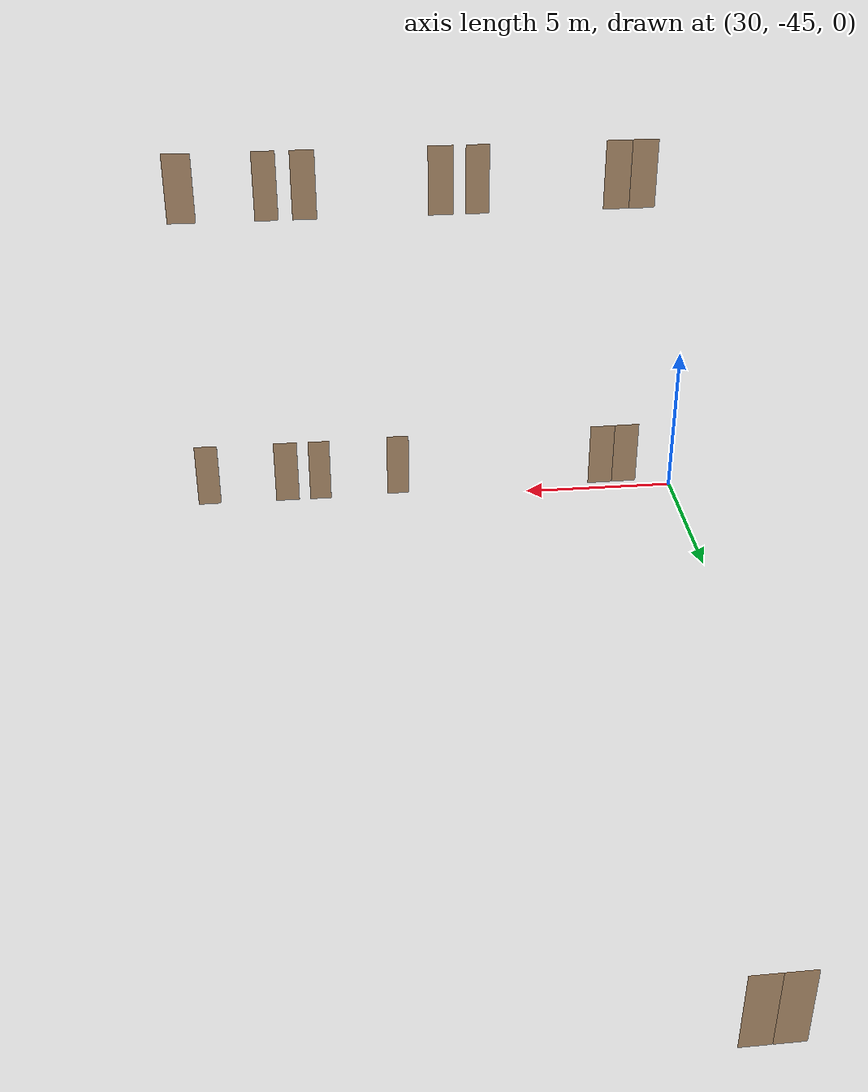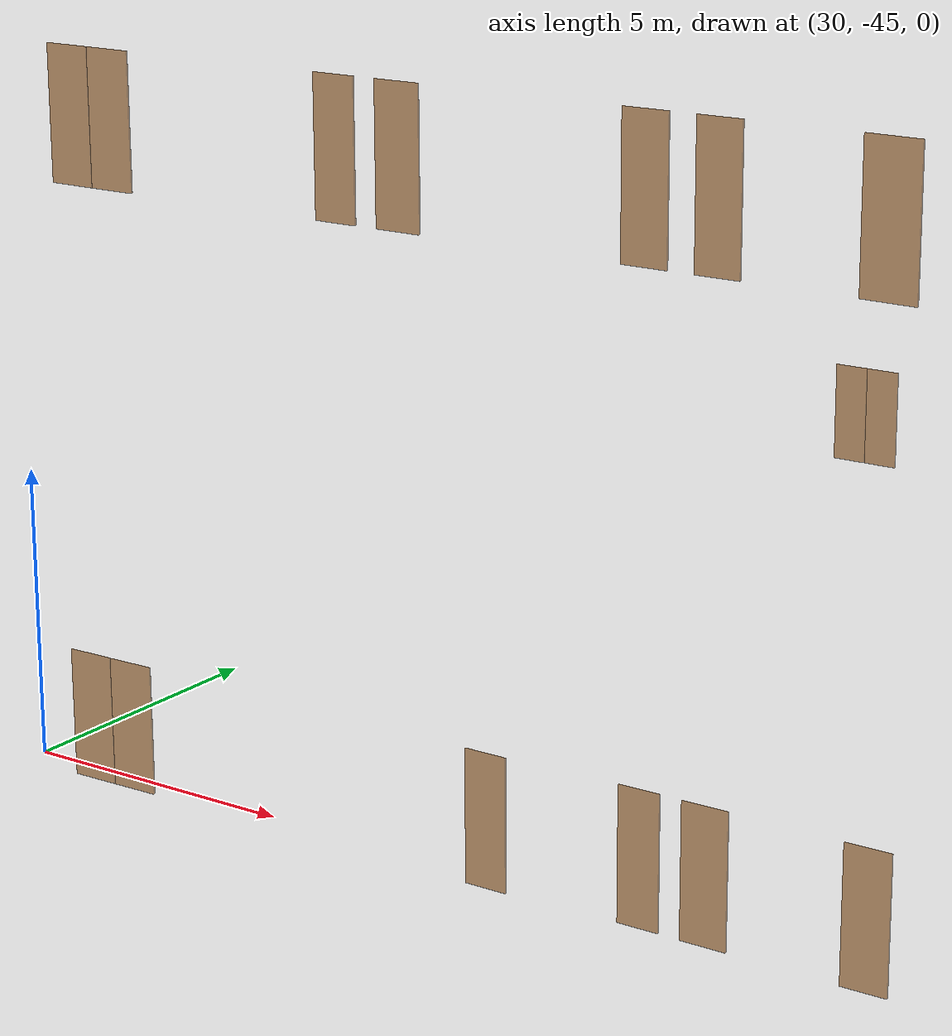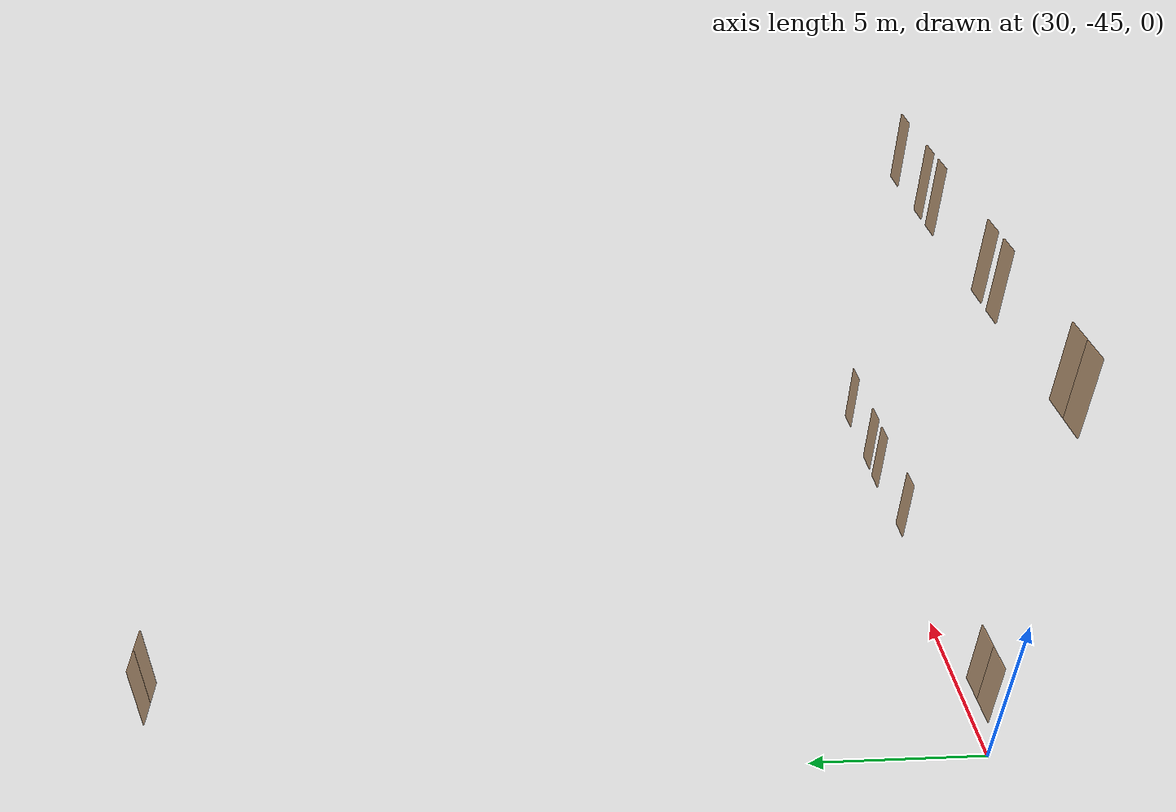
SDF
<sdf version="1.7">
 <world name="sim_world">
  <model name="part1_10_end">
   <pose>33.01170053539864 -21.444909987355643 0.0 0 0 -3.1235009749570586</pose>
   <link name="right">
    <pose>0.38805686569392206 0 1.11 0 0 0</pose>
    <visual name="right_visual">
     <geometry><box><size>0.7661137313878441 0.03 2.2</size></box></geometry>
     <material>
      <ambient>0.5 0.25 0 0.6</ambient>
      <diffuse>0.5 0.25 0 0.6</diffuse>
      <pbr><metal><metalness>0.0</metalness></metal></pbr>
     </material>
    </visual>
    <collision name="right_collision">
     <geometry><box><size>0.7661137313878441 0.03 2.2</size></box></geometry>
     <surface><contact><collide_bitmask>0x02</collide_bitmask></contact></surface>
    </collision>
    <inertial>
     <mass>50.0</mass>
     <inertia><ixx>20.17041666666667</ixx><iyy>22.612209372587532</iyy><izz>2.4492927059208576</izz></inertia>
    </inertial>
   </link>
   <joint name="right_joint" type="revolute">
    <parent>world</parent>
    <child>right</child>
    <axis><xyz>0 0 -1</xyz><limit><lower>0</lower><upper>1.57</upper></limit></axis>
    <pose>0.38805686569392206 0 0 0 0 0</pose>
   </joint>
   <link name="left">
    <pose>-0.38805686569392206 0 1.11 0 0 0</pose>
    <visual name="left_visual">
     <geometry><box><size>0.7661137313878441 0.03 2.2</size></box></geometry>
     <material>
      <ambient>0.5 0.25 0 0.6</ambient>
      <diffuse>0.5 0.25 0 0.6</diffuse>
      <pbr><metal><metalness>0.0</metalness></metal></pbr>
     </material>
    </visual>
    <collision name="left_collision">
     <geometry><box><size>0.7661137313878441 0.03 2.2</size></box></geometry>
     <surface><contact><collide_bitmask>0x02</collide_bitmask></contact></surface>
    </collision>
    <inertial>
     <mass>50.0</mass>
     <inertia><ixx>20.17041666666667</ixx><iyy>22.612209372587532</iyy><izz>2.4492927059208576</izz></inertia>
    </inertial>
   </link>
   <joint name="left_joint" type="revolute">
    <parent>world</parent>
    <child>left</child>
    <axis><xyz>0 0 -1</xyz><limit><lower>-1.57</lower><upper>0</upper></limit></axis>
    <pose>-0.38805686569392206 0 0 0 0 0</pose>
   </joint>
   <plugin name="register_component" filename="libregister_component.so">
    <component name="Door">
     <v_max_door>0.5</v_max_door>
     <a_max_door>0.3</a_max_door>
     <a_nom_door>0.15</a_nom_door>
     <dx_min_door>0.01</dx_min_door>
     <f_max_door>500.0</f_max_door>
     <ros_interface>true</ros_interface>
     <door name="part1_10_end" type="DoubleSwingDoor" left_joint_name="left_joint" right_joint_name="right_joint"/>
    </component>
   </plugin>
  </model>
  <model name="part6_9_end">
   <pose>45.87496071324243 -45.209163320865215 0.0 0 0 -3.124644767900746</pose>
   <link name="right">
    <pose>0 0 1.11 0 0 0</pose>
    <visual name="right_visual">
     <geometry><box><size>0.7541019121911322 0.03 2.2</size></box></geometry>
     <material>
      <ambient>0.5 0.25 0 0.6</ambient>
      <diffuse>0.5 0.25 0 0.6</diffuse>
      <pbr><metal><metalness>0.0</metalness></metal></pbr>
     </material>
    </visual>
    <collision name="right_collision">
     <geometry><box><size>0.7541019121911322 0.03 2.2</size></box></geometry>
     <surface><contact><collide_bitmask>0x02</collide_bitmask></contact></surface>
    </collision>
    <inertial>
     <mass>50.0</mass>
     <inertia><ixx>20.17041666666667</ixx><iyy>22.536123724876347</iyy><izz>2.3732070582096756</izz></inertia>
    </inertial>
   </link>
   <joint name="right_joint" type="revolute">
    <parent>world</parent>
    <child>right</child>
    <axis><xyz>0 0 -1</xyz><limit><lower>0</lower><upper>1.57</upper></limit></axis>
    <pose>0.3820509560955661 0 0 0 0 0</pose>
   </joint>
   <plugin name="register_component" filename="libregister_component.so">
    <component name="Door">
     <v_max_door>0.5</v_max_door>
     <a_max_door>0.3</a_max_door>
     <a_nom_door>0.15</a_nom_door>
     <dx_min_door>0.01</dx_min_door>
     <f_max_door>500.0</f_max_door>
     <ros_interface>true</ros_interface>
     <door name="part6_9_end" type="SwingDoor" left_joint_name="empty_joint" right_joint_name="right_joint"/>
    </component>
   </plugin>
  </model>
  <model name="part6_8">
   <pose>43.22708725172956 -45.21547750472737 0.0 0 0 -3.1343271389946814</pose>
   <link name="right">
    <pose>0 0 1.11 0 0 0</pose>
    <visual name="right_visual">
     <geometry><box><size>0.7806658023973515 0.03 2.2</size></box></geometry>
     <material>
      <ambient>0.5 0.25 0 0.6</ambient>
      <diffuse>0.5 0.25 0 0.6</diffuse>
      <pbr><metal><metalness>0.0</metalness></metal></pbr>
     </material>
    </visual>
    <collision name="right_collision">
     <geometry><box><size>0.7806658023973515 0.03 2.2</size></box></geometry>
     <surface><contact><collide_bitmask>0x02</collide_bitmask></contact></surface>
    </collision>
    <inertial>
     <mass>50.0</mass>
     <inertia><ixx>20.17041666666667</ixx><iyy>22.705996229302926</iyy><izz>2.543079562636253</izz></inertia>
    </inertial>
   </link>
   <joint name="right_joint" type="revolute">
    <parent>world</parent>
    <child>right</child>
    <axis><xyz>0 0 -1</xyz><limit><lower>0</lower><upper>1.57</upper></limit></axis>
    <pose>0.39533290119867576 0 0 0 0 0</pose>
   </joint>
   <plugin name="register_component" filename="libregister_component.so">
    <component name="Door">
     <v_max_door>0.5</v_max_door>
     <a_max_door>0.3</a_max_door>
     <a_nom_door>0.15</a_nom_door>
     <dx_min_door>0.01</dx_min_door>
     <f_max_door>500.0</f_max_door>
     <ros_interface>true</ros_interface>
     <door name="part6_8" type="SwingDoor" left_joint_name="empty_joint" right_joint_name="right_joint"/>
    </component>
   </plugin>
  </model>
  <model name="part6_6">
   <pose>39.43227077368016 -45.329638269879325 0.0 0 0 -3.139936634285074</pose>
   <link name="right">
    <pose>0 0 1.11 0 0 0</pose>
    <visual name="right_visual">
     <geometry><box><size>0.7361016762655125 0.03 2.2</size></box></geometry>
     <material>
      <ambient>0.5 0.25 0 0.6</ambient>
      <diffuse>0.5 0.25 0 0.6</diffuse>
      <pbr><metal><metalness>0.0</metalness></metal></pbr>
     </material>
    </visual>
    <collision name="right_collision">
     <geometry><box><size>0.7361016762655125 0.03 2.2</size></box></geometry>
     <surface><contact><collide_bitmask>0x02</collide_bitmask></contact></surface>
    </collision>
    <inertial>
     <mass>50.0</mass>
     <inertia><ixx>20.17041666666667</ixx><iyy>22.42435699083708</iyy><izz>2.2614403241704055</izz></inertia>
    </inertial>
   </link>
   <joint name="right_joint" type="revolute">
    <parent>world</parent>
    <child>right</child>
    <axis><xyz>0 0 1</xyz><limit><lower>0</lower><upper>1.57</upper></limit></axis>
    <pose>0.37305083813275625 0 0 0 0 0</pose>
   </joint>
   <plugin name="register_component" filename="libregister_component.so">
    <component name="Door">
     <v_max_door>0.5</v_max_door>
     <a_max_door>0.3</a_max_door>
     <a_nom_door>0.15</a_nom_door>
     <dx_min_door>0.01</dx_min_door>
     <f_max_door>500.0</f_max_door>
     <ros_interface>true</ros_interface>
     <door name="part6_6" type="SwingDoor" left_joint_name="empty_joint" right_joint_name="right_joint"/>
    </component>
   </plugin>
  </model>
  <model name="part6_7">
   <pose>42.101445579734346 -45.2161594686769 0.0 0 0 -3.1335356914522765</pose>
   <link name="right">
    <pose>0 0 1.11 0 0 0</pose>
    <visual name="right_visual">
     <geometry><box><size>0.708973800750492 0.03 2.2</size></box></geometry>
     <material>
      <ambient>0.5 0.25 0 0.6</ambient>
      <diffuse>0.5 0.25 0 0.6</diffuse>
      <pbr><metal><metalness>0.0</metalness></metal></pbr>
     </material>
    </visual>
    <collision name="right_collision">
     <geometry><box><size>0.708973800750492 0.03 2.2</size></box></geometry>
     <surface><contact><collide_bitmask>0x02</collide_bitmask></contact></surface>
    </collision>
    <inertial>
     <mass>50.0</mass>
     <inertia><ixx>20.17041666666667</ixx><iyy>22.261016042294166</iyy><izz>2.098099375627493</izz></inertia>
    </inertial>
   </link>
   <joint name="right_joint" type="revolute">
    <parent>world</parent>
    <child>right</child>
    <axis><xyz>0 0 1</xyz><limit><lower>0</lower><upper>1.57</upper></limit></axis>
    <pose>0.359486900375246 0 0 0 0 0</pose>
   </joint>
   <plugin name="register_component" filename="libregister_component.so">
    <component name="Door">
     <v_max_door>0.5</v_max_door>
     <a_max_door>0.3</a_max_door>
     <a_nom_door>0.15</a_nom_door>
     <dx_min_door>0.01</dx_min_door>
     <f_max_door>500.0</f_max_door>
     <ros_interface>true</ros_interface>
     <door name="part6_7" type="SwingDoor" left_joint_name="empty_joint" right_joint_name="right_joint"/>
    </component>
   </plugin>
  </model>
  <model name="part6_5">
   <pose>31.96186918527571 -45.401950517845776 0.0 0 0 -3.119890546180535</pose>
   <link name="right">
    <pose>0.4203733144691241 0 1.11 0 0 0</pose>
    <visual name="right_visual">
     <geometry><box><size>0.8307466289382482 0.03 2.2</size></box></geometry>
     <material>
      <ambient>0.5 0.25 0 0.6</ambient>
      <diffuse>0.5 0.25 0 0.6</diffuse>
      <pbr><metal><metalness>0.0</metalness></metal></pbr>
     </material>
    </visual>
    <collision name="right_collision">
     <geometry><box><size>0.8307466289382482 0.03 2.2</size></box></geometry>
     <surface><contact><collide_bitmask>0x02</collide_bitmask></contact></surface>
    </collision>
    <inertial>
     <mass>50.0</mass>
     <inertia><ixx>20.17041666666667</ixx><iyy>23.042249839551104</iyy><izz>2.8793331728844316</izz></inertia>
    </inertial>
   </link>
   <joint name="right_joint" type="revolute">
    <parent>world</parent>
    <child>right</child>
    <axis><xyz>0 0 -1</xyz><limit><lower>0</lower><upper>1.57</upper></limit></axis>
    <pose>0.4203733144691241 0 0 0 0 0</pose>
   </joint>
   <link name="left">
    <pose>-0.4203733144691241 0 1.11 0 0 0</pose>
    <visual name="left_visual">
     <geometry><box><size>0.8307466289382482 0.03 2.2</size></box></geometry>
     <material>
      <ambient>0.5 0.25 0 0.6</ambient>
      <diffuse>0.5 0.25 0 0.6</diffuse>
      <pbr><metal><metalness>0.0</metalness></metal></pbr>
     </material>
    </visual>
    <collision name="left_collision">
     <geometry><box><size>0.8307466289382482 0.03 2.2</size></box></geometry>
     <surface><contact><collide_bitmask>0x02</collide_bitmask></contact></surface>
    </collision>
    <inertial>
     <mass>50.0</mass>
     <inertia><ixx>20.17041666666667</ixx><iyy>23.042249839551104</iyy><izz>2.8793331728844316</izz></inertia>
    </inertial>
   </link>
   <joint name="left_joint" type="revolute">
    <parent>world</parent>
    <child>left</child>
    <axis><xyz>0 0 -1</xyz><limit><lower>-1.57</lower><upper>0</upper></limit></axis>
    <pose>-0.4203733144691241 0 0 0 0 0</pose>
   </joint>
   <plugin name="register_component" filename="libregister_component.so">
    <component name="Door">
     <v_max_door>0.5</v_max_door>
     <a_max_door>0.3</a_max_door>
     <a_nom_door>0.15</a_nom_door>
     <dx_min_door>0.01</dx_min_door>
     <f_max_door>500.0</f_max_door>
     <ros_interface>true</ros_interface>
     <door name="part6_5" type="DoubleSwingDoor" left_joint_name="left_joint" right_joint_name="right_joint"/>
    </component>
   </plugin>
  </model>
  <model name="L3_part3_6">
   <pose>31.99741594976433 -45.38903346529776 10.0 0 0 -3.1397482828974104</pose>
   <link name="right">
    <pose>0.41080292873451446 0 1.11 0 0 0</pose>
    <visual name="right_visual">
     <geometry><box><size>0.8116058574690289 0.03 2.2</size></box></geometry>
     <material>
      <ambient>0.5 0.25 0 0.6</ambient>
      <diffuse>0.5 0.25 0 0.6</diffuse>
      <pbr><metal><metalness>0.0</metalness></metal></pbr>
     </material>
    </visual>
    <collision name="right_collision">
     <geometry><box><size>0.8116058574690289 0.03 2.2</size></box></geometry>
     <surface><contact><collide_bitmask>0x02</collide_bitmask></contact></surface>
    </collision>
    <inertial>
     <mass>50.0</mass>
     <inertia><ixx>20.17041666666667</ixx><iyy>22.91126694949183</iyy><izz>2.7483502828251574</izz></inertia>
    </inertial>
   </link>
   <joint name="right_joint" type="revolute">
    <parent>world</parent>
    <child>right</child>
    <axis><xyz>0 0 -1</xyz><limit><lower>0</lower><upper>1.57</upper></limit></axis>
    <pose>0.41080292873451446 0 0 0 0 0</pose>
   </joint>
   <link name="left">
    <pose>-0.41080292873451446 0 1.11 0 0 0</pose>
    <visual name="left_visual">
     <geometry><box><size>0.8116058574690289 0.03 2.2</size></box></geometry>
     <material>
      <ambient>0.5 0.25 0 0.6</ambient>
      <diffuse>0.5 0.25 0 0.6</diffuse>
      <pbr><metal><metalness>0.0</metalness></metal></pbr>
     </material>
    </visual>
    <collision name="left_collision">
     <geometry><box><size>0.8116058574690289 0.03 2.2</size></box></geometry>
     <surface><contact><collide_bitmask>0x02</collide_bitmask></contact></surface>
    </collision>
    <inertial>
     <mass>50.0</mass>
     <inertia><ixx>20.17041666666667</ixx><iyy>22.91126694949183</iyy><izz>2.7483502828251574</izz></inertia>
    </inertial>
   </link>
   <joint name="left_joint" type="revolute">
    <parent>world</parent>
    <child>left</child>
    <axis><xyz>0 0 -1</xyz><limit><lower>-1.57</lower><upper>0</upper></limit></axis>
    <pose>-0.41080292873451446 0 0 0 0 0</pose>
   </joint>
   <plugin name="register_component" filename="libregister_component.so">
    <component name="Door">
     <v_max_door>0.5</v_max_door>
     <a_max_door>0.3</a_max_door>
     <a_nom_door>0.15</a_nom_door>
     <dx_min_door>0.01</dx_min_door>
     <f_max_door>500.0</f_max_door>
     <ros_interface>true</ros_interface>
     <door name="L3_part3_6" type="DoubleSwingDoor" left_joint_name="left_joint" right_joint_name="right_joint"/>
    </component>
   </plugin>
  </model>
  <model name="L3_part3_7">
   <pose>36.80853709423835 -45.38015996439974 10.0 0 0 -3.139748282897415</pose>
   <link name="right">
    <pose>0 0 1.11 0 0 0</pose>
    <visual name="right_visual">
     <geometry><box><size>0.732063291960326 0.03 2.2</size></box></geometry>
     <material>
      <ambient>0.5 0.25 0 0.6</ambient>
      <diffuse>0.5 0.25 0 0.6</diffuse>
      <pbr><metal><metalness>0.0</metalness></metal></pbr>
     </material>
    </visual>
    <collision name="right_collision">
     <geometry><box><size>0.732063291960326 0.03 2.2</size></box></geometry>
     <surface><contact><collide_bitmask>0x02</collide_bitmask></contact></surface>
    </collision>
    <inertial>
     <mass>50.0</mass>
     <inertia><ixx>20.17041666666667</ixx><iyy>22.399652764315793</iyy><izz>2.2367360976491235</izz></inertia>
    </inertial>
   </link>
   <joint name="right_joint" type="revolute">
    <parent>world</parent>
    <child>right</child>
    <axis><xyz>0 0 1</xyz><limit><lower>0</lower><upper>1.57</upper></limit></axis>
    <pose>0.371031645980163 0 0 0 0 0</pose>
   </joint>
   <plugin name="register_component" filename="libregister_component.so">
    <component name="Door">
     <v_max_door>0.5</v_max_door>
     <a_max_door>0.3</a_max_door>
     <a_nom_door>0.15</a_nom_door>
     <dx_min_door>0.01</dx_min_door>
     <f_max_door>500.0</f_max_door>
     <ros_interface>true</ros_interface>
     <door name="L3_part3_7" type="SwingDoor" left_joint_name="empty_joint" right_joint_name="right_joint"/>
    </component>
   </plugin>
  </model>
  <model name="L3_part3_8">
   <pose>37.95579362890953 -45.37804399567125 10.0 0 0 -3.1397482828974104</pose>
   <link name="right">
    <pose>0 0 1.11 0 0 0</pose>
    <visual name="right_visual">
     <geometry><box><size>0.7812562154484343 0.03 2.2</size></box></geometry>
     <material>
      <ambient>0.5 0.25 0 0.6</ambient>
      <diffuse>0.5 0.25 0 0.6</diffuse>
      <pbr><metal><metalness>0.0</metalness></metal></pbr>
     </material>
    </visual>
    <collision name="right_collision">
     <geometry><box><size>0.7812562154484343 0.03 2.2</size></box></geometry>
     <surface><contact><collide_bitmask>0x02</collide_bitmask></contact></surface>
    </collision>
    <inertial>
     <mass>50.0</mass>
     <inertia><ixx>20.17041666666667</ixx><iyy>22.70983864240338</iyy><izz>2.54692197573671</izz></inertia>
    </inertial>
   </link>
   <joint name="right_joint" type="revolute">
    <parent>world</parent>
    <child>right</child>
    <axis><xyz>0 0 -1</xyz><limit><lower>0</lower><upper>1.57</upper></limit></axis>
    <pose>0.39562810772421714 0 0 0 0 0</pose>
   </joint>
   <plugin name="register_component" filename="libregister_component.so">
    <component name="Door">
     <v_max_door>0.5</v_max_door>
     <a_max_door>0.3</a_max_door>
     <a_nom_door>0.15</a_nom_door>
     <dx_min_door>0.01</dx_min_door>
     <f_max_door>500.0</f_max_door>
     <ros_interface>true</ros_interface>
     <door name="L3_part3_8" type="SwingDoor" left_joint_name="empty_joint" right_joint_name="right_joint"/>
    </component>
   </plugin>
  </model>
  <model name="L3_part3_9">
   <pose>42.18430121730323 -45.37024505135949 10.0 0 0 -3.1397482828974153</pose>
   <link name="right">
    <pose>0 0 1.11 0 0 0</pose>
    <visual name="right_visual">
     <geometry><box><size>0.7548982462601531 0.03 2.2</size></box></geometry>
     <material>
      <ambient>0.5 0.25 0 0.6</ambient>
      <diffuse>0.5 0.25 0 0.6</diffuse>
      <pbr><metal><metalness>0.0</metalness></metal></pbr>
     </material>
    </visual>
    <collision name="right_collision">
     <geometry><box><size>0.7548982462601531 0.03 2.2</size></box></geometry>
     <surface><contact><collide_bitmask>0x02</collide_bitmask></contact></surface>
    </collision>
    <inertial>
     <mass>50.0</mass>
     <inertia><ixx>20.17041666666667</ixx><iyy>22.541130675861066</iyy><izz>2.3782140091943953</izz></inertia>
    </inertial>
   </link>
   <joint name="right_joint" type="revolute">
    <parent>world</parent>
    <child>right</child>
    <axis><xyz>0 0 1</xyz><limit><lower>0</lower><upper>1.57</upper></limit></axis>
    <pose>0.38244912313007656 0 0 0 0 0</pose>
   </joint>
   <plugin name="register_component" filename="libregister_component.so">
    <component name="Door">
     <v_max_door>0.5</v_max_door>
     <a_max_door>0.3</a_max_door>
     <a_nom_door>0.15</a_nom_door>
     <dx_min_door>0.01</dx_min_door>
     <f_max_door>500.0</f_max_door>
     <ros_interface>true</ros_interface>
     <door name="L3_part3_9" type="SwingDoor" left_joint_name="empty_joint" right_joint_name="right_joint"/>
    </component>
   </plugin>
  </model>
  <model name="L3_part3_10">
   <pose>43.36099426896817 -45.368074790720215 10.0 0 0 -3.139748282897408</pose>
   <link name="right">
    <pose>0 0 1.11 0 0 0</pose>
    <visual name="right_visual">
     <geometry><box><size>0.7228517392703658 0.03 2.2</size></box></geometry>
     <material>
      <ambient>0.5 0.25 0 0.6</ambient>
      <diffuse>0.5 0.25 0 0.6</diffuse>
      <pbr><metal><metalness>0.0</metalness></metal></pbr>
     </material>
    </visual>
    <collision name="right_collision">
     <geometry><box><size>0.7228517392703658 0.03 2.2</size></box></geometry>
     <surface><contact><collide_bitmask>0x02</collide_bitmask></contact></surface>
    </collision>
    <inertial>
     <mass>50.0</mass>
     <inertia><ixx>20.17041666666667</ixx><iyy>22.34381098735914</iyy><izz>2.1808943206924707</izz></inertia>
    </inertial>
   </link>
   <joint name="right_joint" type="revolute">
    <parent>world</parent>
    <child>right</child>
    <axis><xyz>0 0 -1</xyz><limit><lower>0</lower><upper>1.57</upper></limit></axis>
    <pose>0.3664258696351829 0 0 0 0 0</pose>
   </joint>
   <plugin name="register_component" filename="libregister_component.so">
    <component name="Door">
     <v_max_door>0.5</v_max_door>
     <a_max_door>0.3</a_max_door>
     <a_nom_door>0.15</a_nom_door>
     <dx_min_door>0.01</dx_min_door>
     <f_max_door>500.0</f_max_door>
     <ros_interface>true</ros_interface>
     <door name="L3_part3_10" type="SwingDoor" left_joint_name="empty_joint" right_joint_name="right_joint"/>
    </component>
   </plugin>
  </model>
  <model name="L3_part3_11_end">
   <pose>45.97365543558439 -45.37343727670337 10.0 0 0 3.120343478773176</pose>
   <link name="right">
    <pose>0 0 1.11 0 0 0</pose>
    <visual name="right_visual">
     <geometry><box><size>0.8718130438865006 0.03 2.2</size></box></geometry>
     <material>
      <ambient>0.5 0.25 0 0.6</ambient>
      <diffuse>0.5 0.25 0 0.6</diffuse>
      <pbr><metal><metalness>0.0</metalness></metal></pbr>
     </material>
    </visual>
    <collision name="right_collision">
     <geometry><box><size>0.8718130438865006 0.03 2.2</size></box></geometry>
     <surface><contact><collide_bitmask>0x02</collide_bitmask></contact></surface>
    </collision>
    <inertial>
     <mass>50.0</mass>
     <inertia><ixx>20.17041666666667</ixx><iyy>23.333574931211025</iyy><izz>3.170658264544356</izz></inertia>
    </inertial>
   </link>
   <joint name="right_joint" type="revolute">
    <parent>world</parent>
    <child>right</child>
    <axis><xyz>0 0 -1</xyz><limit><lower>0</lower><upper>1.57</upper></limit></axis>
    <pose>0.4409065219432503 0 0 0 0 0</pose>
   </joint>
   <plugin name="register_component" filename="libregister_component.so">
    <component name="Door">
     <v_max_door>0.5</v_max_door>
     <a_max_door>0.3</a_max_door>
     <a_nom_door>0.15</a_nom_door>
     <dx_min_door>0.01</dx_min_door>
     <f_max_door>500.0</f_max_door>
     <ros_interface>true</ros_interface>
     <door name="L3_part3_11_end" type="SwingDoor" left_joint_name="empty_joint" right_joint_name="right_joint"/>
    </component>
   </plugin>
  </model>
 </world>
</sdf>
